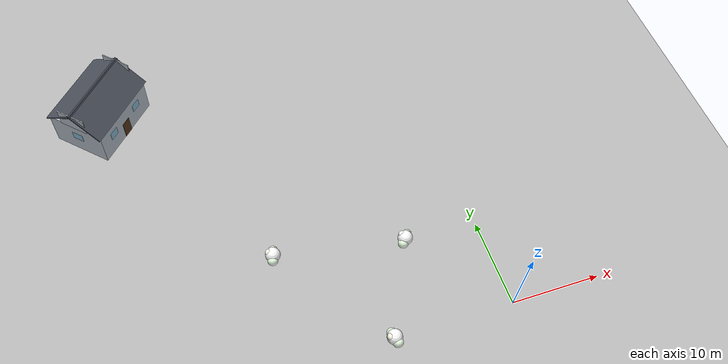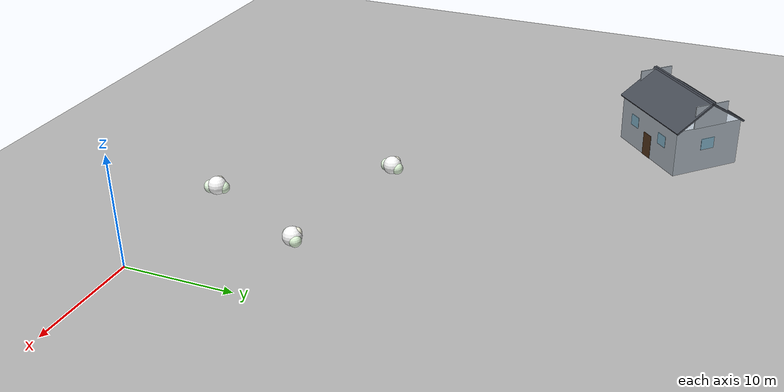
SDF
<sdf version="1.9">
 <world name="vtol_world">
  <model name="ground_plane">
   <static>true</static>
   <link name="link">
    <collision name="collision">
     <geometry><plane><normal>0 0 1</normal><size>200 200</size></plane></geometry>
    </collision>
    <visual name="visual">
     <geometry><plane><normal>0 0 1</normal><size>200 200</size></plane></geometry>
     <material>
      <ambient>0.7 0.7 0.7 1</ambient>
      <diffuse>0.7 0.7 0.7 1</diffuse>
      <specular>0.4 0.4 0.4 1</specular>
     </material>
    </visual>
   </link>
  </model>
  <include><uri>model://house2</uri><name>house_5</name><pose>-37 37 0 0 0 -2.356</pose></include>
  <include><uri>model://bush</uri><name>bush_9</name><pose>-8.28 10.66 0 0 0 3.532</pose></include>
  <include><uri>model://bush</uri><name>bush_10</name><pose>-13.5 0.17 0 0 0 4.429</pose></include>
  <include><uri>model://bush</uri><name>bush_17</name><pose>-22.86 13.2 0 0 0 3.918</pose></include>
 </world>
</sdf>
